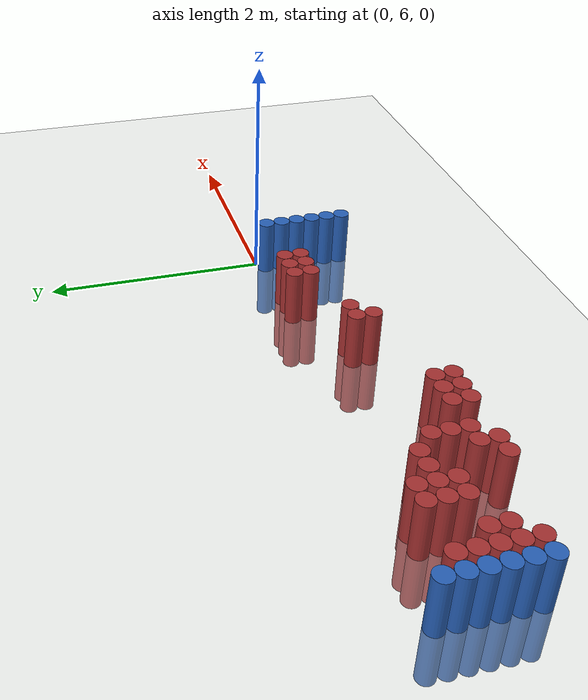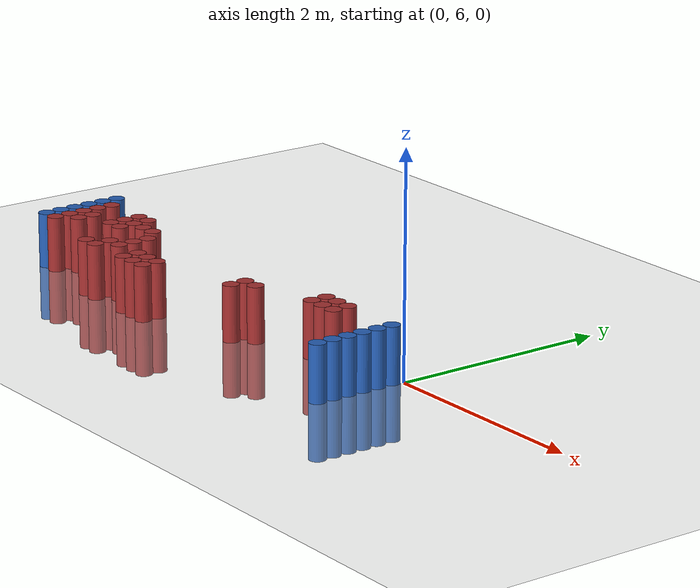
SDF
<sdf version="1.6">
 <world name="default">
  <model name="ground_plane">
   <static>1</static>
   <link name="link">
    <collision name="collision">
     <geometry><plane><normal>0 0 1</normal><size>100 100</size></plane></geometry>
     <surface><friction><ode><mu>100</mu><mu2>50</mu2></ode></friction></surface>
    </collision>
    <visual name="visual">
     <cast_shadows>0</cast_shadows>
     <geometry><plane><normal>0 0 1</normal><size>100 100</size></plane></geometry>
     <material>
      <script><uri>file://media/materials/scripts/gazebo.material</uri><name>Gazebo/Grey</name></script>
     </material>
    </visual>
   </link>
  </model>
  <model name="unit_cylinder_97">
   <static>1</static>
   <pose>-4.425000 5.325000 0.000000 0.000000 0.000000 0.000000</pose>
   <link name="link">
    <inertial>
     <mass>1</mass>
     <inertia><ixx>0.145833</ixx><ixy>0</ixy><ixz>0</ixz><iyy>0.145833</iyy><iyz>0</iyz><izz>0.125</izz></inertia>
    </inertial>
    <collision name="collision">
     <geometry><cylinder><radius>0.075000</radius><length>1</length></cylinder></geometry>
    </collision>
    <visual name="visual">
     <geometry><cylinder><radius>0.075000</radius><length>1</length></cylinder></geometry>
     <material>
      <ambient>0.152000 0.379000 0.720000 1</ambient>
      <diffuse>0.152000 0.379000 0.720000 1</diffuse>
     </material>
     <material>
      <script><name>Gazebo/Grey</name><uri>file://media/materials/scripts/gazebo.material</uri></script>
     </material>
    </visual>
   </link>
  </model>
  <model name="unit_cylinder_98">
   <static>1</static>
   <pose>-4.425000 5.475000 0.000000 0.000000 0.000000 0.000000</pose>
   <link name="link">
    <inertial>
     <mass>1</mass>
     <inertia><ixx>0.145833</ixx><ixy>0</ixy><ixz>0</ixz><iyy>0.145833</iyy><iyz>0</iyz><izz>0.125</izz></inertia>
    </inertial>
    <collision name="collision">
     <geometry><cylinder><radius>0.075000</radius><length>1</length></cylinder></geometry>
    </collision>
    <visual name="visual">
     <geometry><cylinder><radius>0.075000</radius><length>1</length></cylinder></geometry>
     <material>
      <ambient>0.152000 0.379000 0.720000 1</ambient>
      <diffuse>0.152000 0.379000 0.720000 1</diffuse>
     </material>
     <material>
      <script><name>Gazebo/Grey</name><uri>file://media/materials/scripts/gazebo.material</uri></script>
     </material>
    </visual>
   </link>
  </model>
  <model name="unit_cylinder_99">
   <static>1</static>
   <pose>-4.425000 5.625000 0.000000 0.000000 0.000000 0.000000</pose>
   <link name="link">
    <inertial>
     <mass>1</mass>
     <inertia><ixx>0.145833</ixx><ixy>0</ixy><ixz>0</ixz><iyy>0.145833</iyy><iyz>0</iyz><izz>0.125</izz></inertia>
    </inertial>
    <collision name="collision">
     <geometry><cylinder><radius>0.075000</radius><length>1</length></cylinder></geometry>
    </collision>
    <visual name="visual">
     <geometry><cylinder><radius>0.075000</radius><length>1</length></cylinder></geometry>
     <material>
      <ambient>0.152000 0.379000 0.720000 1</ambient>
      <diffuse>0.152000 0.379000 0.720000 1</diffuse>
     </material>
     <material>
      <script><name>Gazebo/Grey</name><uri>file://media/materials/scripts/gazebo.material</uri></script>
     </material>
    </visual>
   </link>
  </model>
  <model name="unit_cylinder_100">
   <static>1</static>
   <pose>-4.425000 5.775000 0.000000 0.000000 0.000000 0.000000</pose>
   <link name="link">
    <inertial>
     <mass>1</mass>
     <inertia><ixx>0.145833</ixx><ixy>0</ixy><ixz>0</ixz><iyy>0.145833</iyy><iyz>0</iyz><izz>0.125</izz></inertia>
    </inertial>
    <collision name="collision">
     <geometry><cylinder><radius>0.075000</radius><length>1</length></cylinder></geometry>
    </collision>
    <visual name="visual">
     <geometry><cylinder><radius>0.075000</radius><length>1</length></cylinder></geometry>
     <material>
      <ambient>0.152000 0.379000 0.720000 1</ambient>
      <diffuse>0.152000 0.379000 0.720000 1</diffuse>
     </material>
     <material>
      <script><name>Gazebo/Grey</name><uri>file://media/materials/scripts/gazebo.material</uri></script>
     </material>
    </visual>
   </link>
  </model>
  <model name="unit_cylinder_101">
   <static>1</static>
   <pose>-4.425000 5.925000 0.000000 0.000000 0.000000 0.000000</pose>
   <link name="link">
    <inertial>
     <mass>1</mass>
     <inertia><ixx>0.145833</ixx><ixy>0</ixy><ixz>0</ixz><iyy>0.145833</iyy><iyz>0</iyz><izz>0.125</izz></inertia>
    </inertial>
    <collision name="collision">
     <geometry><cylinder><radius>0.075000</radius><length>1</length></cylinder></geometry>
    </collision>
    <visual name="visual">
     <geometry><cylinder><radius>0.075000</radius><length>1</length></cylinder></geometry>
     <material>
      <ambient>0.152000 0.379000 0.720000 1</ambient>
      <diffuse>0.152000 0.379000 0.720000 1</diffuse>
     </material>
     <material>
      <script><name>Gazebo/Grey</name><uri>file://media/materials/scripts/gazebo.material</uri></script>
     </material>
    </visual>
   </link>
  </model>
  <model name="unit_cylinder_102">
   <static>1</static>
   <pose>-4.425000 6.075000 0.000000 0.000000 0.000000 0.000000</pose>
   <link name="link">
    <inertial>
     <mass>1</mass>
     <inertia><ixx>0.145833</ixx><ixy>0</ixy><ixz>0</ixz><iyy>0.145833</iyy><iyz>0</iyz><izz>0.125</izz></inertia>
    </inertial>
    <collision name="collision">
     <geometry><cylinder><radius>0.075000</radius><length>1</length></cylinder></geometry>
    </collision>
    <visual name="visual">
     <geometry><cylinder><radius>0.075000</radius><length>1</length></cylinder></geometry>
     <material>
      <ambient>0.152000 0.379000 0.720000 1</ambient>
      <diffuse>0.152000 0.379000 0.720000 1</diffuse>
     </material>
     <material>
      <script><name>Gazebo/Grey</name><uri>file://media/materials/scripts/gazebo.material</uri></script>
     </material>
    </visual>
   </link>
  </model>
  <model name="unit_cylinder_126">
   <static>1</static>
   <pose>-4.275000 5.325000 0.000000 0.000000 0.000000 0.000000</pose>
   <link name="link">
    <inertial>
     <mass>1</mass>
     <inertia><ixx>0.145833</ixx><ixy>0</ixy><ixz>0</ixz><iyy>0.145833</iyy><iyz>0</iyz><izz>0.125</izz></inertia>
    </inertial>
    <collision name="collision">
     <geometry><cylinder><radius>0.075000</radius><length>1</length></cylinder></geometry>
    </collision>
    <visual name="visual">
     <geometry><cylinder><radius>0.075000</radius><length>1</length></cylinder></geometry>
     <material>
      <ambient>0.648000 0.192000 0.192000 1</ambient>
      <diffuse>0.648000 0.192000 0.192000 1</diffuse>
     </material>
     <material>
      <script><name>Gazebo/Grey</name><uri>file://media/materials/scripts/gazebo.material</uri></script>
     </material>
    </visual>
   </link>
  </model>
  <model name="unit_cylinder_127">
   <static>1</static>
   <pose>-4.275000 5.475000 0.000000 0.000000 0.000000 0.000000</pose>
   <link name="link">
    <inertial>
     <mass>1</mass>
     <inertia><ixx>0.145833</ixx><ixy>0</ixy><ixz>0</ixz><iyy>0.145833</iyy><iyz>0</iyz><izz>0.125</izz></inertia>
    </inertial>
    <collision name="collision">
     <geometry><cylinder><radius>0.075000</radius><length>1</length></cylinder></geometry>
    </collision>
    <visual name="visual">
     <geometry><cylinder><radius>0.075000</radius><length>1</length></cylinder></geometry>
     <material>
      <ambient>0.648000 0.192000 0.192000 1</ambient>
      <diffuse>0.648000 0.192000 0.192000 1</diffuse>
     </material>
     <material>
      <script><name>Gazebo/Grey</name><uri>file://media/materials/scripts/gazebo.material</uri></script>
     </material>
    </visual>
   </link>
  </model>
  <model name="unit_cylinder_128">
   <static>1</static>
   <pose>-4.275000 5.625000 0.000000 0.000000 0.000000 0.000000</pose>
   <link name="link">
    <inertial>
     <mass>1</mass>
     <inertia><ixx>0.145833</ixx><ixy>0</ixy><ixz>0</ixz><iyy>0.145833</iyy><iyz>0</iyz><izz>0.125</izz></inertia>
    </inertial>
    <collision name="collision">
     <geometry><cylinder><radius>0.075000</radius><length>1</length></cylinder></geometry>
    </collision>
    <visual name="visual">
     <geometry><cylinder><radius>0.075000</radius><length>1</length></cylinder></geometry>
     <material>
      <ambient>0.648000 0.192000 0.192000 1</ambient>
      <diffuse>0.648000 0.192000 0.192000 1</diffuse>
     </material>
     <material>
      <script><name>Gazebo/Grey</name><uri>file://media/materials/scripts/gazebo.material</uri></script>
     </material>
    </visual>
   </link>
  </model>
  <model name="unit_cylinder_129">
   <static>1</static>
   <pose>-4.275000 5.775000 0.000000 0.000000 0.000000 0.000000</pose>
   <link name="link">
    <inertial>
     <mass>1</mass>
     <inertia><ixx>0.145833</ixx><ixy>0</ixy><ixz>0</ixz><iyy>0.145833</iyy><iyz>0</iyz><izz>0.125</izz></inertia>
    </inertial>
    <collision name="collision">
     <geometry><cylinder><radius>0.075000</radius><length>1</length></cylinder></geometry>
    </collision>
    <visual name="visual">
     <geometry><cylinder><radius>0.075000</radius><length>1</length></cylinder></geometry>
     <material>
      <ambient>0.648000 0.192000 0.192000 1</ambient>
      <diffuse>0.648000 0.192000 0.192000 1</diffuse>
     </material>
     <material>
      <script><name>Gazebo/Grey</name><uri>file://media/materials/scripts/gazebo.material</uri></script>
     </material>
    </visual>
   </link>
  </model>
  <model name="unit_cylinder_130">
   <static>1</static>
   <pose>-4.275000 5.925000 0.000000 0.000000 0.000000 0.000000</pose>
   <link name="link">
    <inertial>
     <mass>1</mass>
     <inertia><ixx>0.145833</ixx><ixy>0</ixy><ixz>0</ixz><iyy>0.145833</iyy><iyz>0</iyz><izz>0.125</izz></inertia>
    </inertial>
    <collision name="collision">
     <geometry><cylinder><radius>0.075000</radius><length>1</length></cylinder></geometry>
    </collision>
    <visual name="visual">
     <geometry><cylinder><radius>0.075000</radius><length>1</length></cylinder></geometry>
     <material>
      <ambient>0.648000 0.192000 0.192000 1</ambient>
      <diffuse>0.648000 0.192000 0.192000 1</diffuse>
     </material>
     <material>
      <script><name>Gazebo/Grey</name><uri>file://media/materials/scripts/gazebo.material</uri></script>
     </material>
    </visual>
   </link>
  </model>
  <model name="unit_cylinder_139">
   <static>1</static>
   <pose>-4.125000 5.475000 0.000000 0.000000 0.000000 0.000000</pose>
   <link name="link">
    <inertial>
     <mass>1</mass>
     <inertia><ixx>0.145833</ixx><ixy>0</ixy><ixz>0</ixz><iyy>0.145833</iyy><iyz>0</iyz><izz>0.125</izz></inertia>
    </inertial>
    <collision name="collision">
     <geometry><cylinder><radius>0.075000</radius><length>1</length></cylinder></geometry>
    </collision>
    <visual name="visual">
     <geometry><cylinder><radius>0.075000</radius><length>1</length></cylinder></geometry>
     <material>
      <ambient>0.648000 0.192000 0.192000 1</ambient>
      <diffuse>0.648000 0.192000 0.192000 1</diffuse>
     </material>
     <material>
      <script><name>Gazebo/Grey</name><uri>file://media/materials/scripts/gazebo.material</uri></script>
     </material>
    </visual>
   </link>
  </model>
  <model name="unit_cylinder_140">
   <static>1</static>
   <pose>-4.125000 5.625000 0.000000 0.000000 0.000000 0.000000</pose>
   <link name="link">
    <inertial>
     <mass>1</mass>
     <inertia><ixx>0.145833</ixx><ixy>0</ixy><ixz>0</ixz><iyy>0.145833</iyy><iyz>0</iyz><izz>0.125</izz></inertia>
    </inertial>
    <collision name="collision">
     <geometry><cylinder><radius>0.075000</radius><length>1</length></cylinder></geometry>
    </collision>
    <visual name="visual">
     <geometry><cylinder><radius>0.075000</radius><length>1</length></cylinder></geometry>
     <material>
      <ambient>0.648000 0.192000 0.192000 1</ambient>
      <diffuse>0.648000 0.192000 0.192000 1</diffuse>
     </material>
     <material>
      <script><name>Gazebo/Grey</name><uri>file://media/materials/scripts/gazebo.material</uri></script>
     </material>
    </visual>
   </link>
  </model>
  <model name="unit_cylinder_152">
   <static>1</static>
   <pose>-3.825000 5.625000 0.000000 0.000000 0.000000 0.000000</pose>
   <link name="link">
    <inertial>
     <mass>1</mass>
     <inertia><ixx>0.145833</ixx><ixy>0</ixy><ixz>0</ixz><iyy>0.145833</iyy><iyz>0</iyz><izz>0.125</izz></inertia>
    </inertial>
    <collision name="collision">
     <geometry><cylinder><radius>0.075000</radius><length>1</length></cylinder></geometry>
    </collision>
    <visual name="visual">
     <geometry><cylinder><radius>0.075000</radius><length>1</length></cylinder></geometry>
     <material>
      <ambient>0.648000 0.192000 0.192000 1</ambient>
      <diffuse>0.648000 0.192000 0.192000 1</diffuse>
     </material>
     <material>
      <script><name>Gazebo/Grey</name><uri>file://media/materials/scripts/gazebo.material</uri></script>
     </material>
    </visual>
   </link>
  </model>
  <model name="unit_cylinder_153">
   <static>1</static>
   <pose>-3.825000 5.775000 0.000000 0.000000 0.000000 0.000000</pose>
   <link name="link">
    <inertial>
     <mass>1</mass>
     <inertia><ixx>0.145833</ixx><ixy>0</ixy><ixz>0</ixz><iyy>0.145833</iyy><iyz>0</iyz><izz>0.125</izz></inertia>
    </inertial>
    <collision name="collision">
     <geometry><cylinder><radius>0.075000</radius><length>1</length></cylinder></geometry>
    </collision>
    <visual name="visual">
     <geometry><cylinder><radius>0.075000</radius><length>1</length></cylinder></geometry>
     <material>
      <ambient>0.648000 0.192000 0.192000 1</ambient>
      <diffuse>0.648000 0.192000 0.192000 1</diffuse>
     </material>
     <material>
      <script><name>Gazebo/Grey</name><uri>file://media/materials/scripts/gazebo.material</uri></script>
     </material>
    </visual>
   </link>
  </model>
  <model name="unit_cylinder_154">
   <static>1</static>
   <pose>-3.825000 5.925000 0.000000 0.000000 0.000000 0.000000</pose>
   <link name="link">
    <inertial>
     <mass>1</mass>
     <inertia><ixx>0.145833</ixx><ixy>0</ixy><ixz>0</ixz><iyy>0.145833</iyy><iyz>0</iyz><izz>0.125</izz></inertia>
    </inertial>
    <collision name="collision">
     <geometry><cylinder><radius>0.075000</radius><length>1</length></cylinder></geometry>
    </collision>
    <visual name="visual">
     <geometry><cylinder><radius>0.075000</radius><length>1</length></cylinder></geometry>
     <material>
      <ambient>0.648000 0.192000 0.192000 1</ambient>
      <diffuse>0.648000 0.192000 0.192000 1</diffuse>
     </material>
     <material>
      <script><name>Gazebo/Grey</name><uri>file://media/materials/scripts/gazebo.material</uri></script>
     </material>
    </visual>
   </link>
  </model>
  <model name="unit_cylinder_159">
   <static>1</static>
   <pose>-3.675000 5.625000 0.000000 0.000000 0.000000 0.000000</pose>
   <link name="link">
    <inertial>
     <mass>1</mass>
     <inertia><ixx>0.145833</ixx><ixy>0</ixy><ixz>0</ixz><iyy>0.145833</iyy><iyz>0</iyz><izz>0.125</izz></inertia>
    </inertial>
    <collision name="collision">
     <geometry><cylinder><radius>0.075000</radius><length>1</length></cylinder></geometry>
    </collision>
    <visual name="visual">
     <geometry><cylinder><radius>0.075000</radius><length>1</length></cylinder></geometry>
     <material>
      <ambient>0.648000 0.192000 0.192000 1</ambient>
      <diffuse>0.648000 0.192000 0.192000 1</diffuse>
     </material>
     <material>
      <script><name>Gazebo/Grey</name><uri>file://media/materials/scripts/gazebo.material</uri></script>
     </material>
    </visual>
   </link>
  </model>
  <model name="unit_cylinder_160">
   <static>1</static>
   <pose>-3.675000 5.775000 0.000000 0.000000 0.000000 0.000000</pose>
   <link name="link">
    <inertial>
     <mass>1</mass>
     <inertia><ixx>0.145833</ixx><ixy>0</ixy><ixz>0</ixz><iyy>0.145833</iyy><iyz>0</iyz><izz>0.125</izz></inertia>
    </inertial>
    <collision name="collision">
     <geometry><cylinder><radius>0.075000</radius><length>1</length></cylinder></geometry>
    </collision>
    <visual name="visual">
     <geometry><cylinder><radius>0.075000</radius><length>1</length></cylinder></geometry>
     <material>
      <ambient>0.648000 0.192000 0.192000 1</ambient>
      <diffuse>0.648000 0.192000 0.192000 1</diffuse>
     </material>
     <material>
      <script><name>Gazebo/Grey</name><uri>file://media/materials/scripts/gazebo.material</uri></script>
     </material>
    </visual>
   </link>
  </model>
  <model name="unit_cylinder_161">
   <static>1</static>
   <pose>-3.675000 5.925000 0.000000 0.000000 0.000000 0.000000</pose>
   <link name="link">
    <inertial>
     <mass>1</mass>
     <inertia><ixx>0.145833</ixx><ixy>0</ixy><ixz>0</ixz><iyy>0.145833</iyy><iyz>0</iyz><izz>0.125</izz></inertia>
    </inertial>
    <collision name="collision">
     <geometry><cylinder><radius>0.075000</radius><length>1</length></cylinder></geometry>
    </collision>
    <visual name="visual">
     <geometry><cylinder><radius>0.075000</radius><length>1</length></cylinder></geometry>
     <material>
      <ambient>0.648000 0.192000 0.192000 1</ambient>
      <diffuse>0.648000 0.192000 0.192000 1</diffuse>
     </material>
     <material>
      <script><name>Gazebo/Grey</name><uri>file://media/materials/scripts/gazebo.material</uri></script>
     </material>
    </visual>
   </link>
  </model>
  <model name="unit_cylinder_164">
   <static>1</static>
   <pose>-3.525000 5.175000 0.000000 0.000000 0.000000 0.000000</pose>
   <link name="link">
    <inertial>
     <mass>1</mass>
     <inertia><ixx>0.145833</ixx><ixy>0</ixy><ixz>0</ixz><iyy>0.145833</iyy><iyz>0</iyz><izz>0.125</izz></inertia>
    </inertial>
    <collision name="collision">
     <geometry><cylinder><radius>0.075000</radius><length>1</length></cylinder></geometry>
    </collision>
    <visual name="visual">
     <geometry><cylinder><radius>0.075000</radius><length>1</length></cylinder></geometry>
     <material>
      <ambient>0.648000 0.192000 0.192000 1</ambient>
      <diffuse>0.648000 0.192000 0.192000 1</diffuse>
     </material>
     <material>
      <script><name>Gazebo/Grey</name><uri>file://media/materials/scripts/gazebo.material</uri></script>
     </material>
    </visual>
   </link>
  </model>
  <model name="unit_cylinder_165">
   <static>1</static>
   <pose>-3.525000 5.775000 0.000000 0.000000 0.000000 0.000000</pose>
   <link name="link">
    <inertial>
     <mass>1</mass>
     <inertia><ixx>0.145833</ixx><ixy>0</ixy><ixz>0</ixz><iyy>0.145833</iyy><iyz>0</iyz><izz>0.125</izz></inertia>
    </inertial>
    <collision name="collision">
     <geometry><cylinder><radius>0.075000</radius><length>1</length></cylinder></geometry>
    </collision>
    <visual name="visual">
     <geometry><cylinder><radius>0.075000</radius><length>1</length></cylinder></geometry>
     <material>
      <ambient>0.648000 0.192000 0.192000 1</ambient>
      <diffuse>0.648000 0.192000 0.192000 1</diffuse>
     </material>
     <material>
      <script><name>Gazebo/Grey</name><uri>file://media/materials/scripts/gazebo.material</uri></script>
     </material>
    </visual>
   </link>
  </model>
  <model name="unit_cylinder_171">
   <static>1</static>
   <pose>-3.375000 5.175000 0.000000 0.000000 0.000000 0.000000</pose>
   <link name="link">
    <inertial>
     <mass>1</mass>
     <inertia><ixx>0.145833</ixx><ixy>0</ixy><ixz>0</ixz><iyy>0.145833</iyy><iyz>0</iyz><izz>0.125</izz></inertia>
    </inertial>
    <collision name="collision">
     <geometry><cylinder><radius>0.075000</radius><length>1</length></cylinder></geometry>
    </collision>
    <visual name="visual">
     <geometry><cylinder><radius>0.075000</radius><length>1</length></cylinder></geometry>
     <material>
      <ambient>0.648000 0.192000 0.192000 1</ambient>
      <diffuse>0.648000 0.192000 0.192000 1</diffuse>
     </material>
     <material>
      <script><name>Gazebo/Grey</name><uri>file://media/materials/scripts/gazebo.material</uri></script>
     </material>
    </visual>
   </link>
  </model>
  <model name="unit_cylinder_172">
   <static>1</static>
   <pose>-3.375000 5.325000 0.000000 0.000000 0.000000 0.000000</pose>
   <link name="link">
    <inertial>
     <mass>1</mass>
     <inertia><ixx>0.145833</ixx><ixy>0</ixy><ixz>0</ixz><iyy>0.145833</iyy><iyz>0</iyz><izz>0.125</izz></inertia>
    </inertial>
    <collision name="collision">
     <geometry><cylinder><radius>0.075000</radius><length>1</length></cylinder></geometry>
    </collision>
    <visual name="visual">
     <geometry><cylinder><radius>0.075000</radius><length>1</length></cylinder></geometry>
     <material>
      <ambient>0.648000 0.192000 0.192000 1</ambient>
      <diffuse>0.648000 0.192000 0.192000 1</diffuse>
     </material>
     <material>
      <script><name>Gazebo/Grey</name><uri>file://media/materials/scripts/gazebo.material</uri></script>
     </material>
    </visual>
   </link>
  </model>
  <model name="unit_cylinder_173">
   <static>1</static>
   <pose>-3.375000 5.775000 0.000000 0.000000 0.000000 0.000000</pose>
   <link name="link">
    <inertial>
     <mass>1</mass>
     <inertia><ixx>0.145833</ixx><ixy>0</ixy><ixz>0</ixz><iyy>0.145833</iyy><iyz>0</iyz><izz>0.125</izz></inertia>
    </inertial>
    <collision name="collision">
     <geometry><cylinder><radius>0.075000</radius><length>1</length></cylinder></geometry>
    </collision>
    <visual name="visual">
     <geometry><cylinder><radius>0.075000</radius><length>1</length></cylinder></geometry>
     <material>
      <ambient>0.648000 0.192000 0.192000 1</ambient>
      <diffuse>0.648000 0.192000 0.192000 1</diffuse>
     </material>
     <material>
      <script><name>Gazebo/Grey</name><uri>file://media/materials/scripts/gazebo.material</uri></script>
     </material>
    </visual>
   </link>
  </model>
  <model name="unit_cylinder_182">
   <static>1</static>
   <pose>-3.225000 5.325000 0.000000 0.000000 0.000000 0.000000</pose>
   <link name="link">
    <inertial>
     <mass>1</mass>
     <inertia><ixx>0.145833</ixx><ixy>0</ixy><ixz>0</ixz><iyy>0.145833</iyy><iyz>0</iyz><izz>0.125</izz></inertia>
    </inertial>
    <collision name="collision">
     <geometry><cylinder><radius>0.075000</radius><length>1</length></cylinder></geometry>
    </collision>
    <visual name="visual">
     <geometry><cylinder><radius>0.075000</radius><length>1</length></cylinder></geometry>
     <material>
      <ambient>0.648000 0.192000 0.192000 1</ambient>
      <diffuse>0.648000 0.192000 0.192000 1</diffuse>
     </material>
     <material>
      <script><name>Gazebo/Grey</name><uri>file://media/materials/scripts/gazebo.material</uri></script>
     </material>
    </visual>
   </link>
  </model>
  <model name="unit_cylinder_183">
   <static>1</static>
   <pose>-3.225000 5.475000 0.000000 0.000000 0.000000 0.000000</pose>
   <link name="link">
    <inertial>
     <mass>1</mass>
     <inertia><ixx>0.145833</ixx><ixy>0</ixy><ixz>0</ixz><iyy>0.145833</iyy><iyz>0</iyz><izz>0.125</izz></inertia>
    </inertial>
    <collision name="collision">
     <geometry><cylinder><radius>0.075000</radius><length>1</length></cylinder></geometry>
    </collision>
    <visual name="visual">
     <geometry><cylinder><radius>0.075000</radius><length>1</length></cylinder></geometry>
     <material>
      <ambient>0.648000 0.192000 0.192000 1</ambient>
      <diffuse>0.648000 0.192000 0.192000 1</diffuse>
     </material>
     <material>
      <script><name>Gazebo/Grey</name><uri>file://media/materials/scripts/gazebo.material</uri></script>
     </material>
    </visual>
   </link>
  </model>
  <model name="unit_cylinder_184">
   <static>1</static>
   <pose>-3.225000 5.625000 0.000000 0.000000 0.000000 0.000000</pose>
   <link name="link">
    <inertial>
     <mass>1</mass>
     <inertia><ixx>0.145833</ixx><ixy>0</ixy><ixz>0</ixz><iyy>0.145833</iyy><iyz>0</iyz><izz>0.125</izz></inertia>
    </inertial>
    <collision name="collision">
     <geometry><cylinder><radius>0.075000</radius><length>1</length></cylinder></geometry>
    </collision>
    <visual name="visual">
     <geometry><cylinder><radius>0.075000</radius><length>1</length></cylinder></geometry>
     <material>
      <ambient>0.648000 0.192000 0.192000 1</ambient>
      <diffuse>0.648000 0.192000 0.192000 1</diffuse>
     </material>
     <material>
      <script><name>Gazebo/Grey</name><uri>file://media/materials/scripts/gazebo.material</uri></script>
     </material>
    </visual>
   </link>
  </model>
  <model name="unit_cylinder_194">
   <static>1</static>
   <pose>-2.925000 5.175000 0.000000 0.000000 0.000000 0.000000</pose>
   <link name="link">
    <inertial>
     <mass>1</mass>
     <inertia><ixx>0.145833</ixx><ixy>0</ixy><ixz>0</ixz><iyy>0.145833</iyy><iyz>0</iyz><izz>0.125</izz></inertia>
    </inertial>
    <collision name="collision">
     <geometry><cylinder><radius>0.075000</radius><length>1</length></cylinder></geometry>
    </collision>
    <visual name="visual">
     <geometry><cylinder><radius>0.075000</radius><length>1</length></cylinder></geometry>
     <material>
      <ambient>0.648000 0.192000 0.192000 1</ambient>
      <diffuse>0.648000 0.192000 0.192000 1</diffuse>
     </material>
     <material>
      <script><name>Gazebo/Grey</name><uri>file://media/materials/scripts/gazebo.material</uri></script>
     </material>
    </visual>
   </link>
  </model>
  <model name="unit_cylinder_195">
   <static>1</static>
   <pose>-2.925000 5.325000 0.000000 0.000000 0.000000 0.000000</pose>
   <link name="link">
    <inertial>
     <mass>1</mass>
     <inertia><ixx>0.145833</ixx><ixy>0</ixy><ixz>0</ixz><iyy>0.145833</iyy><iyz>0</iyz><izz>0.125</izz></inertia>
    </inertial>
    <collision name="collision">
     <geometry><cylinder><radius>0.075000</radius><length>1</length></cylinder></geometry>
    </collision>
    <visual name="visual">
     <geometry><cylinder><radius>0.075000</radius><length>1</length></cylinder></geometry>
     <material>
      <ambient>0.648000 0.192000 0.192000 1</ambient>
      <diffuse>0.648000 0.192000 0.192000 1</diffuse>
     </material>
     <material>
      <script><name>Gazebo/Grey</name><uri>file://media/materials/scripts/gazebo.material</uri></script>
     </material>
    </visual>
   </link>
  </model>
  <model name="unit_cylinder_203">
   <static>1</static>
   <pose>-2.775000 5.175000 0.000000 0.000000 0.000000 0.000000</pose>
   <link name="link">
    <inertial>
     <mass>1</mass>
     <inertia><ixx>0.145833</ixx><ixy>0</ixy><ixz>0</ixz><iyy>0.145833</iyy><iyz>0</iyz><izz>0.125</izz></inertia>
    </inertial>
    <collision name="collision">
     <geometry><cylinder><radius>0.075000</radius><length>1</length></cylinder></geometry>
    </collision>
    <visual name="visual">
     <geometry><cylinder><radius>0.075000</radius><length>1</length></cylinder></geometry>
     <material>
      <ambient>0.648000 0.192000 0.192000 1</ambient>
      <diffuse>0.648000 0.192000 0.192000 1</diffuse>
     </material>
     <material>
      <script><name>Gazebo/Grey</name><uri>file://media/materials/scripts/gazebo.material</uri></script>
     </material>
    </visual>
   </link>
  </model>
  <model name="unit_cylinder_204">
   <static>1</static>
   <pose>-2.775000 5.325000 0.000000 0.000000 0.000000 0.000000</pose>
   <link name="link">
    <inertial>
     <mass>1</mass>
     <inertia><ixx>0.145833</ixx><ixy>0</ixy><ixz>0</ixz><iyy>0.145833</iyy><iyz>0</iyz><izz>0.125</izz></inertia>
    </inertial>
    <collision name="collision">
     <geometry><cylinder><radius>0.075000</radius><length>1</length></cylinder></geometry>
    </collision>
    <visual name="visual">
     <geometry><cylinder><radius>0.075000</radius><length>1</length></cylinder></geometry>
     <material>
      <ambient>0.648000 0.192000 0.192000 1</ambient>
      <diffuse>0.648000 0.192000 0.192000 1</diffuse>
     </material>
     <material>
      <script><name>Gazebo/Grey</name><uri>file://media/materials/scripts/gazebo.material</uri></script>
     </material>
    </visual>
   </link>
  </model>
  <model name="unit_cylinder_211">
   <static>1</static>
   <pose>-2.625000 5.175000 0.000000 0.000000 0.000000 0.000000</pose>
   <link name="link">
    <inertial>
     <mass>1</mass>
     <inertia><ixx>0.145833</ixx><ixy>0</ixy><ixz>0</ixz><iyy>0.145833</iyy><iyz>0</iyz><izz>0.125</izz></inertia>
    </inertial>
    <collision name="collision">
     <geometry><cylinder><radius>0.075000</radius><length>1</length></cylinder></geometry>
    </collision>
    <visual name="visual">
     <geometry><cylinder><radius>0.075000</radius><length>1</length></cylinder></geometry>
     <material>
      <ambient>0.648000 0.192000 0.192000 1</ambient>
      <diffuse>0.648000 0.192000 0.192000 1</diffuse>
     </material>
     <material>
      <script><name>Gazebo/Grey</name><uri>file://media/materials/scripts/gazebo.material</uri></script>
     </material>
    </visual>
   </link>
  </model>
  <model name="unit_cylinder_212">
   <static>1</static>
   <pose>-2.625000 5.325000 0.000000 0.000000 0.000000 0.000000</pose>
   <link name="link">
    <inertial>
     <mass>1</mass>
     <inertia><ixx>0.145833</ixx><ixy>0</ixy><ixz>0</ixz><iyy>0.145833</iyy><iyz>0</iyz><izz>0.125</izz></inertia>
    </inertial>
    <collision name="collision">
     <geometry><cylinder><radius>0.075000</radius><length>1</length></cylinder></geometry>
    </collision>
    <visual name="visual">
     <geometry><cylinder><radius>0.075000</radius><length>1</length></cylinder></geometry>
     <material>
      <ambient>0.648000 0.192000 0.192000 1</ambient>
      <diffuse>0.648000 0.192000 0.192000 1</diffuse>
     </material>
     <material>
      <script><name>Gazebo/Grey</name><uri>file://media/materials/scripts/gazebo.material</uri></script>
     </material>
    </visual>
   </link>
  </model>
  <model name="unit_cylinder_230">
   <static>1</static>
   <pose>-1.725000 5.475000 0.000000 0.000000 0.000000 0.000000</pose>
   <link name="link">
    <inertial>
     <mass>1</mass>
     <inertia><ixx>0.145833</ixx><ixy>0</ixy><ixz>0</ixz><iyy>0.145833</iyy><iyz>0</iyz><izz>0.125</izz></inertia>
    </inertial>
    <collision name="collision">
     <geometry><cylinder><radius>0.075000</radius><length>1</length></cylinder></geometry>
    </collision>
    <visual name="visual">
     <geometry><cylinder><radius>0.075000</radius><length>1</length></cylinder></geometry>
     <material>
      <ambient>0.648000 0.192000 0.192000 1</ambient>
      <diffuse>0.648000 0.192000 0.192000 1</diffuse>
     </material>
     <material>
      <script><name>Gazebo/Grey</name><uri>file://media/materials/scripts/gazebo.material</uri></script>
     </material>
    </visual>
   </link>
  </model>
  <model name="unit_cylinder_231">
   <static>1</static>
   <pose>-1.725000 5.625000 0.000000 0.000000 0.000000 0.000000</pose>
   <link name="link">
    <inertial>
     <mass>1</mass>
     <inertia><ixx>0.145833</ixx><ixy>0</ixy><ixz>0</ixz><iyy>0.145833</iyy><iyz>0</iyz><izz>0.125</izz></inertia>
    </inertial>
    <collision name="collision">
     <geometry><cylinder><radius>0.075000</radius><length>1</length></cylinder></geometry>
    </collision>
    <visual name="visual">
     <geometry><cylinder><radius>0.075000</radius><length>1</length></cylinder></geometry>
     <material>
      <ambient>0.648000 0.192000 0.192000 1</ambient>
      <diffuse>0.648000 0.192000 0.192000 1</diffuse>
     </material>
     <material>
      <script><name>Gazebo/Grey</name><uri>file://media/materials/scripts/gazebo.material</uri></script>
     </material>
    </visual>
   </link>
  </model>
  <model name="unit_cylinder_232">
   <static>1</static>
   <pose>-1.575000 5.625000 0.000000 0.000000 0.000000 0.000000</pose>
   <link name="link">
    <inertial>
     <mass>1</mass>
     <inertia><ixx>0.145833</ixx><ixy>0</ixy><ixz>0</ixz><iyy>0.145833</iyy><iyz>0</iyz><izz>0.125</izz></inertia>
    </inertial>
    <collision name="collision">
     <geometry><cylinder><radius>0.075000</radius><length>1</length></cylinder></geometry>
    </collision>
    <visual name="visual">
     <geometry><cylinder><radius>0.075000</radius><length>1</length></cylinder></geometry>
     <material>
      <ambient>0.648000 0.192000 0.192000 1</ambient>
      <diffuse>0.648000 0.192000 0.192000 1</diffuse>
     </material>
     <material>
      <script><name>Gazebo/Grey</name><uri>file://media/materials/scripts/gazebo.material</uri></script>
     </material>
    </visual>
   </link>
  </model>
  <model name="unit_cylinder_233">
   <static>1</static>
   <pose>-0.975000 5.775000 0.000000 0.000000 0.000000 0.000000</pose>
   <link name="link">
    <inertial>
     <mass>1</mass>
     <inertia><ixx>0.145833</ixx><ixy>0</ixy><ixz>0</ixz><iyy>0.145833</iyy><iyz>0</iyz><izz>0.125</izz></inertia>
    </inertial>
    <collision name="collision">
     <geometry><cylinder><radius>0.075000</radius><length>1</length></cylinder></geometry>
    </collision>
    <visual name="visual">
     <geometry><cylinder><radius>0.075000</radius><length>1</length></cylinder></geometry>
     <material>
      <ambient>0.648000 0.192000 0.192000 1</ambient>
      <diffuse>0.648000 0.192000 0.192000 1</diffuse>
     </material>
     <material>
      <script><name>Gazebo/Grey</name><uri>file://media/materials/scripts/gazebo.material</uri></script>
     </material>
    </visual>
   </link>
  </model>
  <model name="unit_cylinder_234">
   <static>1</static>
   <pose>-0.975000 5.925000 0.000000 0.000000 0.000000 0.000000</pose>
   <link name="link">
    <inertial>
     <mass>1</mass>
     <inertia><ixx>0.145833</ixx><ixy>0</ixy><ixz>0</ixz><iyy>0.145833</iyy><iyz>0</iyz><izz>0.125</izz></inertia>
    </inertial>
    <collision name="collision">
     <geometry><cylinder><radius>0.075000</radius><length>1</length></cylinder></geometry>
    </collision>
    <visual name="visual">
     <geometry><cylinder><radius>0.075000</radius><length>1</length></cylinder></geometry>
     <material>
      <ambient>0.648000 0.192000 0.192000 1</ambient>
      <diffuse>0.648000 0.192000 0.192000 1</diffuse>
     </material>
     <material>
      <script><name>Gazebo/Grey</name><uri>file://media/materials/scripts/gazebo.material</uri></script>
     </material>
    </visual>
   </link>
  </model>
  <model name="unit_cylinder_235">
   <static>1</static>
   <pose>-0.825000 5.775000 0.000000 0.000000 0.000000 0.000000</pose>
   <link name="link">
    <inertial>
     <mass>1</mass>
     <inertia><ixx>0.145833</ixx><ixy>0</ixy><ixz>0</ixz><iyy>0.145833</iyy><iyz>0</iyz><izz>0.125</izz></inertia>
    </inertial>
    <collision name="collision">
     <geometry><cylinder><radius>0.075000</radius><length>1</length></cylinder></geometry>
    </collision>
    <visual name="visual">
     <geometry><cylinder><radius>0.075000</radius><length>1</length></cylinder></geometry>
     <material>
      <ambient>0.648000 0.192000 0.192000 1</ambient>
      <diffuse>0.648000 0.192000 0.192000 1</diffuse>
     </material>
     <material>
      <script><name>Gazebo/Grey</name><uri>file://media/materials/scripts/gazebo.material</uri></script>
     </material>
    </visual>
   </link>
  </model>
  <model name="unit_cylinder_236">
   <static>1</static>
   <pose>-0.825000 5.925000 0.000000 0.000000 0.000000 0.000000</pose>
   <link name="link">
    <inertial>
     <mass>1</mass>
     <inertia><ixx>0.145833</ixx><ixy>0</ixy><ixz>0</ixz><iyy>0.145833</iyy><iyz>0</iyz><izz>0.125</izz></inertia>
    </inertial>
    <collision name="collision">
     <geometry><cylinder><radius>0.075000</radius><length>1</length></cylinder></geometry>
    </collision>
    <visual name="visual">
     <geometry><cylinder><radius>0.075000</radius><length>1</length></cylinder></geometry>
     <material>
      <ambient>0.648000 0.192000 0.192000 1</ambient>
      <diffuse>0.648000 0.192000 0.192000 1</diffuse>
     </material>
     <material>
      <script><name>Gazebo/Grey</name><uri>file://media/materials/scripts/gazebo.material</uri></script>
     </material>
    </visual>
   </link>
  </model>
  <model name="unit_cylinder_238">
   <static>1</static>
   <pose>-0.675000 5.775000 0.000000 0.000000 0.000000 0.000000</pose>
   <link name="link">
    <inertial>
     <mass>1</mass>
     <inertia><ixx>0.145833</ixx><ixy>0</ixy><ixz>0</ixz><iyy>0.145833</iyy><iyz>0</iyz><izz>0.125</izz></inertia>
    </inertial>
    <collision name="collision">
     <geometry><cylinder><radius>0.075000</radius><length>1</length></cylinder></geometry>
    </collision>
    <visual name="visual">
     <geometry><cylinder><radius>0.075000</radius><length>1</length></cylinder></geometry>
     <material>
      <ambient>0.648000 0.192000 0.192000 1</ambient>
      <diffuse>0.648000 0.192000 0.192000 1</diffuse>
     </material>
     <material>
      <script><name>Gazebo/Grey</name><uri>file://media/materials/scripts/gazebo.material</uri></script>
     </material>
    </visual>
   </link>
  </model>
  <model name="unit_cylinder_239">
   <static>1</static>
   <pose>-0.675000 5.925000 0.000000 0.000000 0.000000 0.000000</pose>
   <link name="link">
    <inertial>
     <mass>1</mass>
     <inertia><ixx>0.145833</ixx><ixy>0</ixy><ixz>0</ixz><iyy>0.145833</iyy><iyz>0</iyz><izz>0.125</izz></inertia>
    </inertial>
    <collision name="collision">
     <geometry><cylinder><radius>0.075000</radius><length>1</length></cylinder></geometry>
    </collision>
    <visual name="visual">
     <geometry><cylinder><radius>0.075000</radius><length>1</length></cylinder></geometry>
     <material>
      <ambient>0.648000 0.192000 0.192000 1</ambient>
      <diffuse>0.648000 0.192000 0.192000 1</diffuse>
     </material>
     <material>
      <script><name>Gazebo/Grey</name><uri>file://media/materials/scripts/gazebo.material</uri></script>
     </material>
    </visual>
   </link>
  </model>
  <model name="unit_cylinder_261">
   <static>1</static>
   <pose>-0.075000 5.175000 0.000000 0.000000 0.000000 0.000000</pose>
   <link name="link">
    <inertial>
     <mass>1</mass>
     <inertia><ixx>0.145833</ixx><ixy>0</ixy><ixz>0</ixz><iyy>0.145833</iyy><iyz>0</iyz><izz>0.125</izz></inertia>
    </inertial>
    <collision name="collision">
     <geometry><cylinder><radius>0.075000</radius><length>1</length></cylinder></geometry>
    </collision>
    <visual name="visual">
     <geometry><cylinder><radius>0.075000</radius><length>1</length></cylinder></geometry>
     <material>
      <ambient>0.152000 0.379000 0.720000 1</ambient>
      <diffuse>0.152000 0.379000 0.720000 1</diffuse>
     </material>
     <material>
      <script><name>Gazebo/Grey</name><uri>file://media/materials/scripts/gazebo.material</uri></script>
     </material>
    </visual>
   </link>
  </model>
  <model name="unit_cylinder_262">
   <static>1</static>
   <pose>-0.075000 5.325000 0.000000 0.000000 0.000000 0.000000</pose>
   <link name="link">
    <inertial>
     <mass>1</mass>
     <inertia><ixx>0.145833</ixx><ixy>0</ixy><ixz>0</ixz><iyy>0.145833</iyy><iyz>0</iyz><izz>0.125</izz></inertia>
    </inertial>
    <collision name="collision">
     <geometry><cylinder><radius>0.075000</radius><length>1</length></cylinder></geometry>
    </collision>
    <visual name="visual">
     <geometry><cylinder><radius>0.075000</radius><length>1</length></cylinder></geometry>
     <material>
      <ambient>0.152000 0.379000 0.720000 1</ambient>
      <diffuse>0.152000 0.379000 0.720000 1</diffuse>
     </material>
     <material>
      <script><name>Gazebo/Grey</name><uri>file://media/materials/scripts/gazebo.material</uri></script>
     </material>
    </visual>
   </link>
  </model>
  <model name="unit_cylinder_263">
   <static>1</static>
   <pose>-0.075000 5.475000 0.000000 0.000000 0.000000 0.000000</pose>
   <link name="link">
    <inertial>
     <mass>1</mass>
     <inertia><ixx>0.145833</ixx><ixy>0</ixy><ixz>0</ixz><iyy>0.145833</iyy><iyz>0</iyz><izz>0.125</izz></inertia>
    </inertial>
    <collision name="collision">
     <geometry><cylinder><radius>0.075000</radius><length>1</length></cylinder></geometry>
    </collision>
    <visual name="visual">
     <geometry><cylinder><radius>0.075000</radius><length>1</length></cylinder></geometry>
     <material>
      <ambient>0.152000 0.379000 0.720000 1</ambient>
      <diffuse>0.152000 0.379000 0.720000 1</diffuse>
     </material>
     <material>
      <script><name>Gazebo/Grey</name><uri>file://media/materials/scripts/gazebo.material</uri></script>
     </material>
    </visual>
   </link>
  </model>
  <model name="unit_cylinder_264">
   <static>1</static>
   <pose>-0.075000 5.625000 0.000000 0.000000 0.000000 0.000000</pose>
   <link name="link">
    <inertial>
     <mass>1</mass>
     <inertia><ixx>0.145833</ixx><ixy>0</ixy><ixz>0</ixz><iyy>0.145833</iyy><iyz>0</iyz><izz>0.125</izz></inertia>
    </inertial>
    <collision name="collision">
     <geometry><cylinder><radius>0.075000</radius><length>1</length></cylinder></geometry>
    </collision>
    <visual name="visual">
     <geometry><cylinder><radius>0.075000</radius><length>1</length></cylinder></geometry>
     <material>
      <ambient>0.152000 0.379000 0.720000 1</ambient>
      <diffuse>0.152000 0.379000 0.720000 1</diffuse>
     </material>
     <material>
      <script><name>Gazebo/Grey</name><uri>file://media/materials/scripts/gazebo.material</uri></script>
     </material>
    </visual>
   </link>
  </model>
  <model name="unit_cylinder_265">
   <static>1</static>
   <pose>-0.075000 5.775000 0.000000 0.000000 0.000000 0.000000</pose>
   <link name="link">
    <inertial>
     <mass>1</mass>
     <inertia><ixx>0.145833</ixx><ixy>0</ixy><ixz>0</ixz><iyy>0.145833</iyy><iyz>0</iyz><izz>0.125</izz></inertia>
    </inertial>
    <collision name="collision">
     <geometry><cylinder><radius>0.075000</radius><length>1</length></cylinder></geometry>
    </collision>
    <visual name="visual">
     <geometry><cylinder><radius>0.075000</radius><length>1</length></cylinder></geometry>
     <material>
      <ambient>0.152000 0.379000 0.720000 1</ambient>
      <diffuse>0.152000 0.379000 0.720000 1</diffuse>
     </material>
     <material>
      <script><name>Gazebo/Grey</name><uri>file://media/materials/scripts/gazebo.material</uri></script>
     </material>
    </visual>
   </link>
  </model>
  <model name="unit_cylinder_266">
   <static>1</static>
   <pose>-0.075000 5.925000 0.000000 0.000000 0.000000 0.000000</pose>
   <link name="link">
    <inertial>
     <mass>1</mass>
     <inertia><ixx>0.145833</ixx><ixy>0</ixy><ixz>0</ixz><iyy>0.145833</iyy><iyz>0</iyz><izz>0.125</izz></inertia>
    </inertial>
    <collision name="collision">
     <geometry><cylinder><radius>0.075000</radius><length>1</length></cylinder></geometry>
    </collision>
    <visual name="visual">
     <geometry><cylinder><radius>0.075000</radius><length>1</length></cylinder></geometry>
     <material>
      <ambient>0.152000 0.379000 0.720000 1</ambient>
      <diffuse>0.152000 0.379000 0.720000 1</diffuse>
     </material>
     <material>
      <script><name>Gazebo/Grey</name><uri>file://media/materials/scripts/gazebo.material</uri></script>
     </material>
    </visual>
   </link>
  </model>
 </world>
</sdf>
